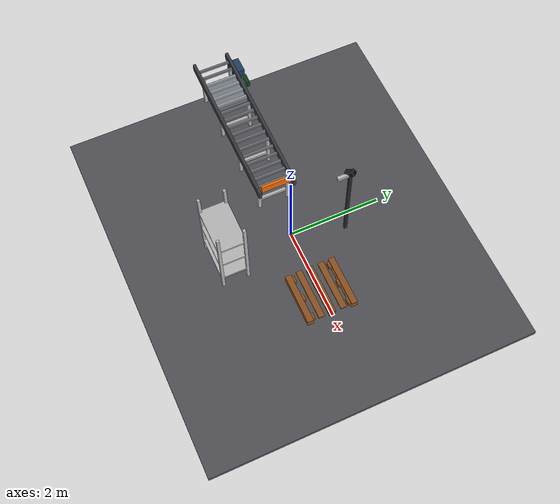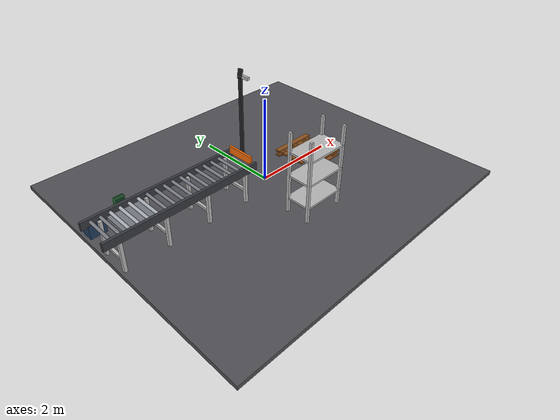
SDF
<?xml version="1.0"?>
<sdf version="1.8">
  <world name="ahead_workcell_v3_3_linear">
    <plugin filename="ignition-gazebo-physics-system" name="ignition::gazebo::systems::Physics"/>
    <plugin filename="ignition-gazebo-user-commands-system" name="ignition::gazebo::systems::UserCommands"/>
    <plugin filename="ignition-gazebo-scene-broadcaster-system" name="ignition::gazebo::systems::SceneBroadcaster"/>
    <plugin filename="ignition-gazebo-sensors-system" name="ignition::gazebo::systems::Sensors"><render_engine>ogre2</render_engine></plugin>
    <gravity>0 0 -9.80665</gravity>
    <physics name="default_physics" type="ignored"><max_step_size>0.001</max_step_size><real_time_factor>1.0</real_time_factor></physics>
    <light type="directional" name="sun"><pose>0 0 8 0 0 0</pose><diffuse>0.8 0.8 0.8 1</diffuse><direction>-0.4 0.3 -1</direction></light>

    <model name="floor"><static>true</static><link name="floor_link">
      <collision name="collision"><pose>0 0 -0.05 0 0 0</pose><geometry><box><size>8 7 0.10</size></box></geometry></collision>
      <visual name="visual"><pose>0 0 -0.05 0 0 0</pose><geometry><box><size>8 7 0.10</size></box></geometry><material><ambient>0.22 0.22 0.23 1</ambient><diffuse>0.32 0.32 0.34 1</diffuse></material></visual>
    </link></model>

    <model name="conveyor_main">
      <static>true</static>

      <link name="conveyor_link">

        <collision name="collision">
          <pose>-2.45 0 0.75 0 0 0</pose>
          <geometry>
            <box><size>3.50 0.80 0.20</size></box>
          </geometry>

          <surface>
            <friction>
              <ode>
                <mu>0.7</mu>
                <mu2>150</mu2>
                <fdir1>0 1 0</fdir1>
              </ode>
            </friction>
          </surface>
        </collision>

        <visual name="rail_left">
          <pose>-2.45 -0.38 0.84 0 0 0</pose>
          <geometry>
            <box><size>3.60 0.065 0.18</size></box>
          </geometry>
          <material>
            <ambient>0.10 0.11 0.12 1</ambient>
            <diffuse>0.22 0.23 0.25 1</diffuse>
          </material>
        </visual>

        <visual name="rail_right">
          <pose>-2.45 0.38 0.84 0 0 0</pose>
          <geometry>
            <box><size>3.60 0.065 0.18</size></box>
          </geometry>
          <material>
            <ambient>0.10 0.11 0.12 1</ambient>
            <diffuse>0.22 0.23 0.25 1</diffuse>
          </material>
        </visual>

        <visual name="roller_00">
          <pose>-4.05 0 0.86 1.57079632679 0 0</pose>
          <geometry>
            <cylinder>
              <radius>0.035</radius>
              <length>0.68</length>
            </cylinder>
          </geometry>
          <material>
            <ambient>0.28 0.29 0.31 1</ambient>
            <diffuse>0.46 0.47 0.50 1</diffuse>
          </material>
        </visual>

        <visual name="roller_01">
          <pose>-3.85 0 0.86 1.57079632679 0 0</pose>
          <geometry>
            <cylinder>
              <radius>0.035</radius>
              <length>0.68</length>
            </cylinder>
          </geometry>
          <material>
            <ambient>0.28 0.29 0.31 1</ambient>
            <diffuse>0.46 0.47 0.50 1</diffuse>
          </material>
        </visual>

        <visual name="roller_02">
          <pose>-3.65 0 0.86 1.57079632679 0 0</pose>
          <geometry>
            <cylinder>
              <radius>0.035</radius>
              <length>0.68</length>
            </cylinder>
          </geometry>
          <material>
            <ambient>0.40 0.42 0.44 1</ambient>
            <diffuse>0.65 0.67 0.70 1</diffuse>
          </material>
        </visual>

        <visual name="roller_03">
          <pose>-3.45 0 0.86 1.57079632679 0 0</pose>
          <geometry>
            <cylinder>
              <radius>0.035</radius>
              <length>0.68</length>
            </cylinder>
          </geometry>
          <material>
            <ambient>0.40 0.42 0.44 1</ambient>
            <diffuse>0.65 0.67 0.70 1</diffuse>
          </material>
        </visual>

        <visual name="roller_04">
          <pose>-3.25 0 0.86 1.57079632679 0 0</pose>
          <geometry>
            <cylinder>
              <radius>0.035</radius>
              <length>0.68</length>
            </cylinder>
          </geometry>
          <material>
            <ambient>0.40 0.42 0.44 1</ambient>
            <diffuse>0.65 0.67 0.70 1</diffuse>
          </material>
        </visual>

        <visual name="roller_05">
          <pose>-3.05 0 0.86 1.57079632679 0 0</pose>
          <geometry>
            <cylinder>
              <radius>0.035</radius>
              <length>0.68</length>
            </cylinder>
          </geometry>
          <material>
            <ambient>0.40 0.42 0.44 1</ambient>
            <diffuse>0.65 0.67 0.70 1</diffuse>
          </material>
        </visual>

        <visual name="roller_06">
          <pose>-2.85 0 0.86 1.57079632679 0 0</pose>
          <geometry>
            <cylinder>
              <radius>0.035</radius>
              <length>0.68</length>
            </cylinder>
          </geometry>
          <material>
            <ambient>0.28 0.29 0.31 1</ambient>
            <diffuse>0.46 0.47 0.50 1</diffuse>
          </material>
        </visual>

        <visual name="roller_07">
          <pose>-2.65 0 0.86 1.57079632679 0 0</pose>
          <geometry>
            <cylinder>
              <radius>0.035</radius>
              <length>0.68</length>
            </cylinder>
          </geometry>
          <material>
            <ambient>0.28 0.29 0.31 1</ambient>
            <diffuse>0.46 0.47 0.50 1</diffuse>
          </material>
        </visual>

        <visual name="roller_08">
          <pose>-2.45 0 0.86 1.57079632679 0 0</pose>
          <geometry>
            <cylinder>
              <radius>0.035</radius>
              <length>0.68</length>
            </cylinder>
          </geometry>
          <material>
            <ambient>0.28 0.29 0.31 1</ambient>
            <diffuse>0.46 0.47 0.50 1</diffuse>
          </material>
        </visual>

        <visual name="roller_09">
          <pose>-2.25 0 0.86 1.57079632679 0 0</pose>
          <geometry>
            <cylinder>
              <radius>0.035</radius>
              <length>0.68</length>
            </cylinder>
          </geometry>
          <material>
            <ambient>0.28 0.29 0.31 1</ambient>
            <diffuse>0.46 0.47 0.50 1</diffuse>
          </material>
        </visual>

        <visual name="roller_10">
          <pose>-2.05 0 0.86 1.57079632679 0 0</pose>
          <geometry>
            <cylinder>
              <radius>0.035</radius>
              <length>0.68</length>
            </cylinder>
          </geometry>
          <material>
            <ambient>0.28 0.29 0.31 1</ambient>
            <diffuse>0.46 0.47 0.50 1</diffuse>
          </material>
        </visual>

        <visual name="roller_11">
          <pose>-1.85 0 0.86 1.57079632679 0 0</pose>
          <geometry>
            <cylinder>
              <radius>0.035</radius>
              <length>0.68</length>
            </cylinder>
          </geometry>
          <material>
            <ambient>0.28 0.29 0.31 1</ambient>
            <diffuse>0.46 0.47 0.50 1</diffuse>
          </material>
        </visual>

        <visual name="roller_12">
          <pose>-1.65 0 0.86 1.57079632679 0 0</pose>
          <geometry>
            <cylinder>
              <radius>0.035</radius>
              <length>0.68</length>
            </cylinder>
          </geometry>
          <material>
            <ambient>0.28 0.29 0.31 1</ambient>
            <diffuse>0.46 0.47 0.50 1</diffuse>
          </material>
        </visual>

        <visual name="roller_13">
          <pose>-1.45 0 0.86 1.57079632679 0 0</pose>
          <geometry>
            <cylinder>
              <radius>0.035</radius>
              <length>0.68</length>
            </cylinder>
          </geometry>
          <material>
            <ambient>0.28 0.29 0.31 1</ambient>
            <diffuse>0.46 0.47 0.50 1</diffuse>
          </material>
        </visual>

        <visual name="roller_14">
          <pose>-1.25 0 0.86 1.57079632679 0 0</pose>
          <geometry>
            <cylinder>
              <radius>0.035</radius>
              <length>0.68</length>
            </cylinder>
          </geometry>
          <material>
            <ambient>0.28 0.29 0.31 1</ambient>
            <diffuse>0.46 0.47 0.50 1</diffuse>
          </material>
        </visual>

        <visual name="roller_15">
          <pose>-1.05 0 0.86 1.57079632679 0 0</pose>
          <geometry>
            <cylinder>
              <radius>0.035</radius>
              <length>0.68</length>
            </cylinder>
          </geometry>
          <material>
            <ambient>0.28 0.29 0.31 1</ambient>
            <diffuse>0.46 0.47 0.50 1</diffuse>
          </material>
        </visual>

        <visual name="roller_16">
          <pose>-0.85 0 0.86 1.57079632679 0 0</pose>
          <geometry>
            <cylinder>
              <radius>0.035</radius>
              <length>0.68</length>
            </cylinder>
          </geometry>
          <material>
            <ambient>0.28 0.29 0.31 1</ambient>
            <diffuse>0.46 0.47 0.50 1</diffuse>
          </material>
        </visual>

        <visual name="leg_left_0">
          <pose>-3.9 -0.32 0.40 0 0 0</pose>
          <geometry>
            <box><size>0.07 0.07 0.80</size></box>
          </geometry>
        </visual>

        <visual name="leg_right_0">
          <pose>-3.9 0.32 0.40 0 0 0</pose>
          <geometry>
            <box><size>0.07 0.07 0.80</size></box>
          </geometry>
        </visual>

        <visual name="crossbar_0">
          <pose>-3.9 0 0.30 0 0 0</pose>
          <geometry>
            <box><size>0.06 0.68 0.06</size></box>
          </geometry>
        </visual>

        <visual name="leg_left_1">
          <pose>-2.9 -0.32 0.40 0 0 0</pose>
          <geometry>
            <box><size>0.07 0.07 0.80</size></box>
          </geometry>
        </visual>

        <visual name="leg_right_1">
          <pose>-2.9 0.32 0.40 0 0 0</pose>
          <geometry>
            <box><size>0.07 0.07 0.80</size></box>
          </geometry>
        </visual>

        <visual name="crossbar_1">
          <pose>-2.9 0 0.30 0 0 0</pose>
          <geometry>
            <box><size>0.06 0.68 0.06</size></box>
          </geometry>
        </visual>

        <visual name="leg_left_2">
          <pose>-1.9 -0.32 0.40 0 0 0</pose>
          <geometry>
            <box><size>0.07 0.07 0.80</size></box>
          </geometry>
        </visual>

        <visual name="leg_right_2">
          <pose>-1.9 0.32 0.40 0 0 0</pose>
          <geometry>
            <box><size>0.07 0.07 0.80</size></box>
          </geometry>
        </visual>

        <visual name="crossbar_2">
          <pose>-1.9 0 0.30 0 0 0</pose>
          <geometry>
            <box><size>0.06 0.68 0.06</size></box>
          </geometry>
        </visual>

        <visual name="leg_left_3">
          <pose>-0.9 -0.32 0.40 0 0 0</pose>
          <geometry>
            <box><size>0.07 0.07 0.80</size></box>
          </geometry>
        </visual>

        <visual name="leg_right_3">
          <pose>-0.9 0.32 0.40 0 0 0</pose>
          <geometry>
            <box><size>0.07 0.07 0.80</size></box>
          </geometry>
        </visual>

        <visual name="crossbar_3">
          <pose>-0.9 0 0.30 0 0 0</pose>
          <geometry>
            <box><size>0.06 0.68 0.06</size></box>
          </geometry>
        </visual>

        <!-- Pick stopper -->
        <visual name="pick_stopper">
          <pose>-0.72 0 0.96 0 0 0</pose>
          <geometry>
            <box><size>0.05 0.66 0.18</size></box>
          </geometry>
          <material>
            <ambient>0.75 0.28 0.02 1</ambient>
            <diffuse>0.95 0.42 0.03 1</diffuse>
          </material>
        </visual>

        <!-- Drive motor -->
        <visual name="drive_motor">
          <pose>-3.95 0.47 0.63 0 0 0</pose>
          <geometry>
            <box><size>0.35 0.26 0.30</size></box>
          </geometry>
          <material>
            <ambient>0.08 0.11 0.16 1</ambient>
            <diffuse>0.13 0.24 0.37 1</diffuse>
          </material>
        </visual>

      </link>

      <plugin filename="libignition-gazebo-track-controller-system.so"
              name="gz::sim::systems::TrackController">
        <link>conveyor_link</link>
      </plugin>

    </model>

    <model name="inline_scale">
      <static>true</static>

      <link name="scale_link">

        <visual name="scale_frame">
          <pose>-3.38 0 0.755 0 0 0</pose>
          <geometry>
            <box><size>0.72 0.70 0.085</size></box>
          </geometry>
          <material>
            <ambient>0.24 0.25 0.27 1</ambient>
            <diffuse>0.47 0.49 0.52 1</diffuse>
          </material>
        </visual>

        <visual name="loadcell_base">
          <pose>-3.38 0 0.685 0 0 0</pose>
          <geometry>
            <box><size>0.58 0.55 0.05</size></box>
          </geometry>
          <material>
            <ambient>0.09 0.10 0.11 1</ambient>
            <diffuse>0.18 0.19 0.20 1</diffuse>
          </material>
        </visual>

        <visual name="scale_indicator">
          <pose>-3.38 0.48 0.93 0 0 0</pose>
          <geometry>
            <box><size>0.22 0.08 0.15</size></box>
          </geometry>
          <material>
            <ambient>0.03 0.10 0.05 1</ambient>
            <diffuse>0.05 0.24 0.11 1</diffuse>
          </material>
        </visual>

      </link>
    </model>

    <model name="pallet_main">
      <static>true</static>
      <pose>1.45 0 0 0 0 0</pose>
      <link name="pallet_link">

      <collision name="bottom_runner_0_collision">
        <pose>0 -0.48 0.0125 0 0 0</pose>
        <geometry><box><size>1.1 0.14 0.025</size></box></geometry>
      </collision>
      <visual name="bottom_runner_0_visual">
        <pose>0 -0.48 0.0125 0 0 0</pose>
        <geometry><box><size>1.1 0.14 0.025</size></box></geometry>
        <material>
          <ambient>0.34 0.20 0.08 1</ambient>
          <diffuse>0.55 0.32 0.12 1</diffuse>
        </material>
      </visual>

      <collision name="bottom_runner_1_collision">
        <pose>0 0.0 0.0125 0 0 0</pose>
        <geometry><box><size>1.1 0.14 0.025</size></box></geometry>
      </collision>
      <visual name="bottom_runner_1_visual">
        <pose>0 0.0 0.0125 0 0 0</pose>
        <geometry><box><size>1.1 0.14 0.025</size></box></geometry>
        <material>
          <ambient>0.34 0.20 0.08 1</ambient>
          <diffuse>0.55 0.32 0.12 1</diffuse>
        </material>
      </visual>

      <collision name="bottom_runner_2_collision">
        <pose>0 0.48 0.0125 0 0 0</pose>
        <geometry><box><size>1.1 0.14 0.025</size></box></geometry>
      </collision>
      <visual name="bottom_runner_2_visual">
        <pose>0 0.48 0.0125 0 0 0</pose>
        <geometry><box><size>1.1 0.14 0.025</size></box></geometry>
        <material>
          <ambient>0.34 0.20 0.08 1</ambient>
          <diffuse>0.55 0.32 0.12 1</diffuse>
        </material>
      </visual>

      <collision name="support_block_0_0_collision">
        <pose>-0.44 -0.44 0.07 0 0 0</pose>
        <geometry><box><size>0.14 0.15 0.09</size></box></geometry>
      </collision>
      <visual name="support_block_0_0_visual">
        <pose>-0.44 -0.44 0.07 0 0 0</pose>
        <geometry><box><size>0.14 0.15 0.09</size></box></geometry>
        <material>
          <ambient>0.34 0.20 0.08 1</ambient>
          <diffuse>0.55 0.32 0.12 1</diffuse>
        </material>
      </visual>

      <collision name="support_block_0_1_collision">
        <pose>-0.44 0.0 0.07 0 0 0</pose>
        <geometry><box><size>0.14 0.15 0.09</size></box></geometry>
      </collision>
      <visual name="support_block_0_1_visual">
        <pose>-0.44 0.0 0.07 0 0 0</pose>
        <geometry><box><size>0.14 0.15 0.09</size></box></geometry>
        <material>
          <ambient>0.34 0.20 0.08 1</ambient>
          <diffuse>0.55 0.32 0.12 1</diffuse>
        </material>
      </visual>

      <collision name="support_block_0_2_collision">
        <pose>-0.44 0.44 0.07 0 0 0</pose>
        <geometry><box><size>0.14 0.15 0.09</size></box></geometry>
      </collision>
      <visual name="support_block_0_2_visual">
        <pose>-0.44 0.44 0.07 0 0 0</pose>
        <geometry><box><size>0.14 0.15 0.09</size></box></geometry>
        <material>
          <ambient>0.34 0.20 0.08 1</ambient>
          <diffuse>0.55 0.32 0.12 1</diffuse>
        </material>
      </visual>

      <collision name="support_block_1_0_collision">
        <pose>0.0 -0.44 0.07 0 0 0</pose>
        <geometry><box><size>0.14 0.15 0.09</size></box></geometry>
      </collision>
      <visual name="support_block_1_0_visual">
        <pose>0.0 -0.44 0.07 0 0 0</pose>
        <geometry><box><size>0.14 0.15 0.09</size></box></geometry>
        <material>
          <ambient>0.34 0.20 0.08 1</ambient>
          <diffuse>0.55 0.32 0.12 1</diffuse>
        </material>
      </visual>

      <collision name="support_block_1_1_collision">
        <pose>0.0 0.0 0.07 0 0 0</pose>
        <geometry><box><size>0.14 0.15 0.09</size></box></geometry>
      </collision>
      <visual name="support_block_1_1_visual">
        <pose>0.0 0.0 0.07 0 0 0</pose>
        <geometry><box><size>0.14 0.15 0.09</size></box></geometry>
        <material>
          <ambient>0.34 0.20 0.08 1</ambient>
          <diffuse>0.55 0.32 0.12 1</diffuse>
        </material>
      </visual>

      <collision name="support_block_1_2_collision">
        <pose>0.0 0.44 0.07 0 0 0</pose>
        <geometry><box><size>0.14 0.15 0.09</size></box></geometry>
      </collision>
      <visual name="support_block_1_2_visual">
        <pose>0.0 0.44 0.07 0 0 0</pose>
        <geometry><box><size>0.14 0.15 0.09</size></box></geometry>
        <material>
          <ambient>0.34 0.20 0.08 1</ambient>
          <diffuse>0.55 0.32 0.12 1</diffuse>
        </material>
      </visual>

      <collision name="support_block_2_0_collision">
        <pose>0.44 -0.44 0.07 0 0 0</pose>
        <geometry><box><size>0.14 0.15 0.09</size></box></geometry>
      </collision>
      <visual name="support_block_2_0_visual">
        <pose>0.44 -0.44 0.07 0 0 0</pose>
        <geometry><box><size>0.14 0.15 0.09</size></box></geometry>
        <material>
          <ambient>0.34 0.20 0.08 1</ambient>
          <diffuse>0.55 0.32 0.12 1</diffuse>
        </material>
      </visual>

      <collision name="support_block_2_1_collision">
        <pose>0.44 0.0 0.07 0 0 0</pose>
        <geometry><box><size>0.14 0.15 0.09</size></box></geometry>
      </collision>
      <visual name="support_block_2_1_visual">
        <pose>0.44 0.0 0.07 0 0 0</pose>
        <geometry><box><size>0.14 0.15 0.09</size></box></geometry>
        <material>
          <ambient>0.34 0.20 0.08 1</ambient>
          <diffuse>0.55 0.32 0.12 1</diffuse>
        </material>
      </visual>

      <collision name="support_block_2_2_collision">
        <pose>0.44 0.44 0.07 0 0 0</pose>
        <geometry><box><size>0.14 0.15 0.09</size></box></geometry>
      </collision>
      <visual name="support_block_2_2_visual">
        <pose>0.44 0.44 0.07 0 0 0</pose>
        <geometry><box><size>0.14 0.15 0.09</size></box></geometry>
        <material>
          <ambient>0.34 0.20 0.08 1</ambient>
          <diffuse>0.55 0.32 0.12 1</diffuse>
        </material>
      </visual>

      <collision name="top_board_0_collision">
        <pose>0 -0.484 0.1325 0 0 0</pose>
        <geometry><box><size>1.1 0.13 0.035</size></box></geometry>
      </collision>
      <visual name="top_board_0_visual">
        <pose>0 -0.484 0.1325 0 0 0</pose>
        <geometry><box><size>1.1 0.13 0.035</size></box></geometry>
        <material>
          <ambient>0.34 0.20 0.08 1</ambient>
          <diffuse>0.55 0.32 0.12 1</diffuse>
        </material>
      </visual>

      <collision name="top_board_1_collision">
        <pose>0 -0.242 0.1325 0 0 0</pose>
        <geometry><box><size>1.1 0.13 0.035</size></box></geometry>
      </collision>
      <visual name="top_board_1_visual">
        <pose>0 -0.242 0.1325 0 0 0</pose>
        <geometry><box><size>1.1 0.13 0.035</size></box></geometry>
        <material>
          <ambient>0.34 0.20 0.08 1</ambient>
          <diffuse>0.55 0.32 0.12 1</diffuse>
        </material>
      </visual>

      <collision name="top_board_2_collision">
        <pose>0 0.0 0.1325 0 0 0</pose>
        <geometry><box><size>1.1 0.13 0.035</size></box></geometry>
      </collision>
      <visual name="top_board_2_visual">
        <pose>0 0.0 0.1325 0 0 0</pose>
        <geometry><box><size>1.1 0.13 0.035</size></box></geometry>
        <material>
          <ambient>0.34 0.20 0.08 1</ambient>
          <diffuse>0.55 0.32 0.12 1</diffuse>
        </material>
      </visual>

      <collision name="top_board_3_collision">
        <pose>0 0.242 0.1325 0 0 0</pose>
        <geometry><box><size>1.1 0.13 0.035</size></box></geometry>
      </collision>
      <visual name="top_board_3_visual">
        <pose>0 0.242 0.1325 0 0 0</pose>
        <geometry><box><size>1.1 0.13 0.035</size></box></geometry>
        <material>
          <ambient>0.34 0.20 0.08 1</ambient>
          <diffuse>0.55 0.32 0.12 1</diffuse>
        </material>
      </visual>

      <collision name="top_board_4_collision">
        <pose>0 0.484 0.1325 0 0 0</pose>
        <geometry><box><size>1.1 0.13 0.035</size></box></geometry>
      </collision>
      <visual name="top_board_4_visual">
        <pose>0 0.484 0.1325 0 0 0</pose>
        <geometry><box><size>1.1 0.13 0.035</size></box></geometry>
        <material>
          <ambient>0.34 0.20 0.08 1</ambient>
          <diffuse>0.55 0.32 0.12 1</diffuse>
        </material>
      </visual>

      </link>
    </model>

    <model name="buffer_rack">
      <static>true</static>

      <pose>0 -1.45 0 0 0 0</pose>

      <link name="rack_link">

        <!-- vertical posts -->
        <visual name="post_fl">
          <pose>-0.48 -0.27 0.95 0 0 0</pose>
          <geometry><box><size>0.06 0.06 1.90</size></box></geometry>
        </visual>

        <visual name="post_fr">
          <pose>0.48 -0.27 0.95 0 0 0</pose>
          <geometry><box><size>0.06 0.06 1.90</size></box></geometry>
        </visual>

        <visual name="post_bl">
          <pose>-0.48 0.27 0.95 0 0 0</pose>
          <geometry><box><size>0.06 0.06 1.90</size></box></geometry>
        </visual>

        <visual name="post_br">
          <pose>0.48 0.27 0.95 0 0 0</pose>
          <geometry><box><size>0.06 0.06 1.90</size></box></geometry>
        </visual>

        <!-- 3 shelves -->
        <visual name="shelf_1">
          <pose>0 0 0.35 0 0 0</pose>
          <geometry><box><size>1.00 0.60 0.045</size></box></geometry>
        </visual>

        <visual name="shelf_2">
          <pose>0 0 0.90 0 0 0</pose>
          <geometry><box><size>1.00 0.60 0.045</size></box></geometry>
        </visual>

        <visual name="shelf_3">
          <pose>0 0 1.45 0 0 0</pose>
          <geometry><box><size>1.00 0.60 0.045</size></box></geometry>
        </visual>

      </link>
    </model>

    <model name="camera_1_cctv_base">
      <static>true</static>

      <link name="camera_1_link">

        <visual name="camera_post">
          <pose>0.30 1.10 1.05 0 0 0</pose>
          <geometry>
            <box><size>0.07 0.07 2.10</size></box>
          </geometry>
          <material>
            <ambient>0.08 0.08 0.09 1</ambient>
            <diffuse>0.15 0.15 0.17 1</diffuse>
          </material>
        </visual>

        <visual name="camera_arm">
          <pose>0.30 0.98 2.10 0 0 0</pose>
          <geometry>
            <box><size>0.07 0.30 0.07</size></box>
          </geometry>
        </visual>

        <visual name="camera_housing">
          <pose>0.3 1.1 2.15 0 0.651595 -2.419938</pose>
          <geometry>
            <box><size>0.20 0.11 0.095</size></box>
          </geometry>
          <material>
            <ambient>0.03 0.03 0.035 1</ambient>
            <diffuse>0.07 0.07 0.08 1</diffuse>
          </material>
        </visual>

        <sensor name="cctv_camera_1" type="camera">

          <pose>0.3 1.1 2.15 0 0.651595 -2.419938</pose>

          <always_on>true</always_on>
          <update_rate>15</update_rate>

          <topic>/pac/top_camera/image</topic>

          <camera>
            <horizontal_fov>1.40</horizontal_fov>

            <image>
              <width>1280</width>
              <height>720</height>
              <format>R8G8B8</format>
            </image>

            <clip>
              <near>0.10</near>
              <far>8.0</far>
            </clip>

          </camera>

        </sensor>

      </link>
    </model>

    <!-- HDP160-31 is spawned separately only after verified description is available. -->
  </world>
</sdf>
